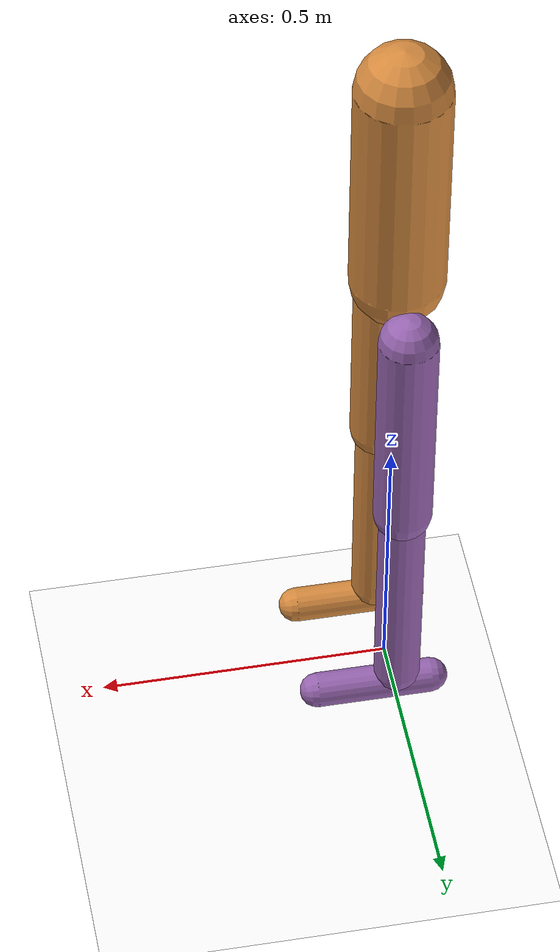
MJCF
<mujoco model="zancudo_v2">
  <compiler angle="radian"/>

  <option integrator="implicitfast"/>

  <size nkey="2"/>

  <visual>
    <headlight ambient="0.4 0.4 0.4" diffuse="0.6 0.6 0.6"/>
  </visual>

  <default>
    <joint armature="0.01" damping="1" axis="0 -1 0"/>
    <geom rgba="0.85 0.55 0.25 1"/>
    <general forcelimited="true" forcerange="-150 150" biastype="affine" gainprm="300" biasprm="0 -300 -20"/>
  </default>

  <asset>
    <texture type="skybox" colorspace="auto" builtin="gradient" rgb1="0.5 0.6 0.7" rgb2="0.1 0.1 0.15" width="200" height="1200"/>
    <texture type="2d" colorspace="auto" name="cuadros" builtin="checker" rgb1="0.75 0.8 0.75" rgb2="0.45 0.5 0.45" width="300" height="300"/>
    <material name="suelo" texture="cuadros" texrepeat="10 10"/>
  </asset>

  <worldbody>
    <geom name="suelo" size="20 20 0.1" type="plane" rgba="1 1 1 1" material="suelo"/>
    <light pos="0 0 3" type="directional"/>
    <body name="torso" pos="0 0 0.865">
      <joint name="raiz_x" type="slide" armature="0" damping="0" axis="1 0 0"/>
      <joint name="raiz_z" type="slide" armature="0" damping="0" axis="0 0 1"/>
      <joint name="raiz_giro" armature="0" damping="0" axis="0 1 0"/>
      <geom name="torso" size="0.08 0.2" pos="0 0 0.25" quat="0 1 0 0" type="capsule" mass="12"/>
      <site name="imu" pos="0 0 0.3"/>
      <camera name="lado" quat="0.707107 0.707107 0 0" pos="0 -3 0" mode="trackcom"/>
      <body name="muslo_d" pos="0 -0.1 0">
        <joint name="cadera_d" range="-1.57 1.57"/>
        <geom size="0.05 0.2" pos="0 0 -0.2" type="capsule" mass="3"/>
        <body name="pierna_d" pos="0 0 -0.4">
          <joint name="rodilla_d" range="-2.6 0"/>
          <geom size="0.04 0.2" pos="0 0 -0.2" type="capsule" mass="2"/>
          <body name="pie_d" pos="0 0 -0.4">
            <joint name="tobillo_d" range="-0.78 0.78"/>
            <geom name="pie_d" size="0.03 0.1" pos="0.04 0 -0.03" quat="0.707107 0 -0.707107 0" type="capsule" mass="0.8"/>
            <site name="planta_d" size="0.11 0.04 0.035" pos="0.04 0 -0.03" type="box" rgba="0 0 0 0"/>
          </body>
        </body>
      </body>
      <body name="muslo_i" pos="0 0.1 0">
        <joint name="cadera_i" range="-1.57 1.57"/>
        <geom size="0.05 0.2" pos="0 0 -0.2" type="capsule" rgba="0.6 0.4 0.7 1" mass="3"/>
        <body name="pierna_i" pos="0 0 -0.4">
          <joint name="rodilla_i" range="-2.6 0"/>
          <geom size="0.04 0.2" pos="0 0 -0.2" type="capsule" rgba="0.6 0.4 0.7 1" mass="2"/>
          <body name="pie_i" pos="0 0 -0.4">
            <joint name="tobillo_i" range="-0.78 0.78"/>
            <geom name="pie_i" size="0.03 0.1" pos="0.04 0 -0.03" quat="0.707107 0 -0.707107 0" type="capsule" rgba="0.6 0.4 0.7 1" mass="0.8"/>
            <site name="planta_i" size="0.11 0.04 0.035" pos="0.04 0 -0.03" type="box" rgba="0 0 0 0"/>
          </body>
        </body>
      </body>
    </body>
  </worldbody>

  <equality>
    <weld name="grua" body1="torso" anchor="0 1 0" active="false"/>
  </equality>

  <actuator>
    <general name="m_cadera_d" joint="cadera_d" ctrlrange="-1.57 1.57"/>
    <general name="m_rodilla_d" joint="rodilla_d" ctrlrange="-2.6 0"/>
    <general name="m_tobillo_d" joint="tobillo_d" ctrlrange="-0.78 0.78"/>
    <general name="m_cadera_i" joint="cadera_i" ctrlrange="-1.57 1.57"/>
    <general name="m_rodilla_i" joint="rodilla_i" ctrlrange="-2.6 0"/>
    <general name="m_tobillo_i" joint="tobillo_i" ctrlrange="-0.78 0.78"/>
  </actuator>

  <sensor>
    <accelerometer site="imu" name="acelerometro"/>
    <gyro site="imu" name="giroscopo"/>
    <touch site="planta_d" name="tacto_d"/>
    <touch site="planta_i" name="tacto_i"/>
    <subtreecom body="torso" name="cdm"/>
  </sensor>

  <keyframe>
    <key name="agachado" qpos="0 -0.097934 0 0.5 -1 0.5 0.5 -1 0.5" ctrl="0.5 -1 0.5 0.5 -1 0.5"/>
    <key name="colgado" qpos="0 0 0 0.5 -1 0.5 0.5 -1 0.5" ctrl="0.5 -1 0.5 0.5 -1 0.5"/>
  </keyframe>
</mujoco>
